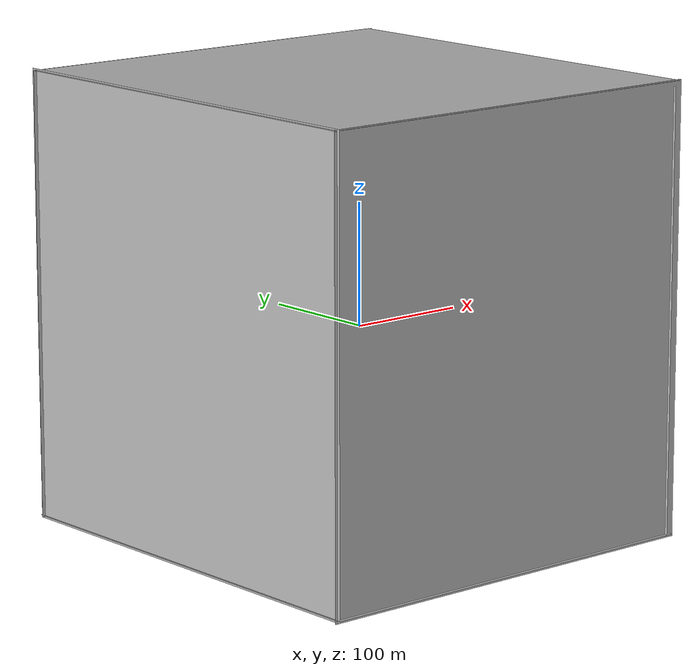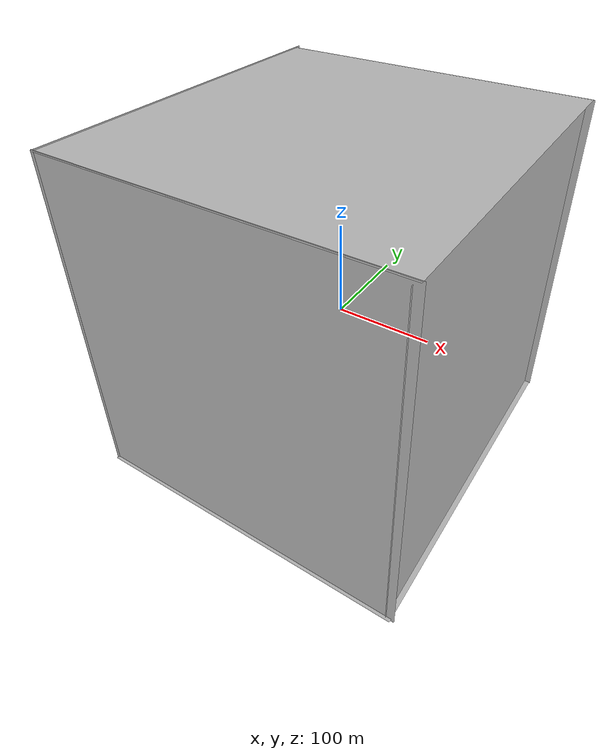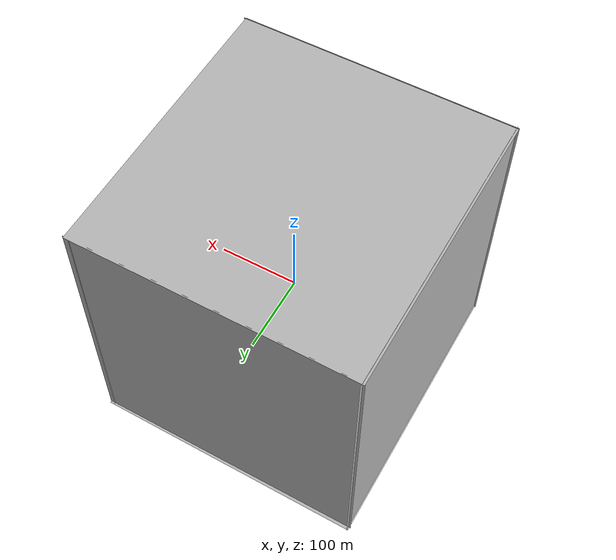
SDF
<?xml version="1.0" ?>
<sdf version="1.6">
    <model name='skybox'>
      <static>1</static>
      <link name='body'>
        <visual name='visual'>
        <cast_shadows>false</cast_shadows>
        <material>
           <lighting>false</lighting>
        </material>
          <geometry>
            <mesh>
              <uri>model://skybox/meshes/skybox.dae</uri>
            </mesh>
          </geometry>
        </visual>
        <self_collide>0</self_collide>
        <enable_wind>0</enable_wind>
        <kinematic>0</kinematic>
      </link>
    </model>
</sdf>
